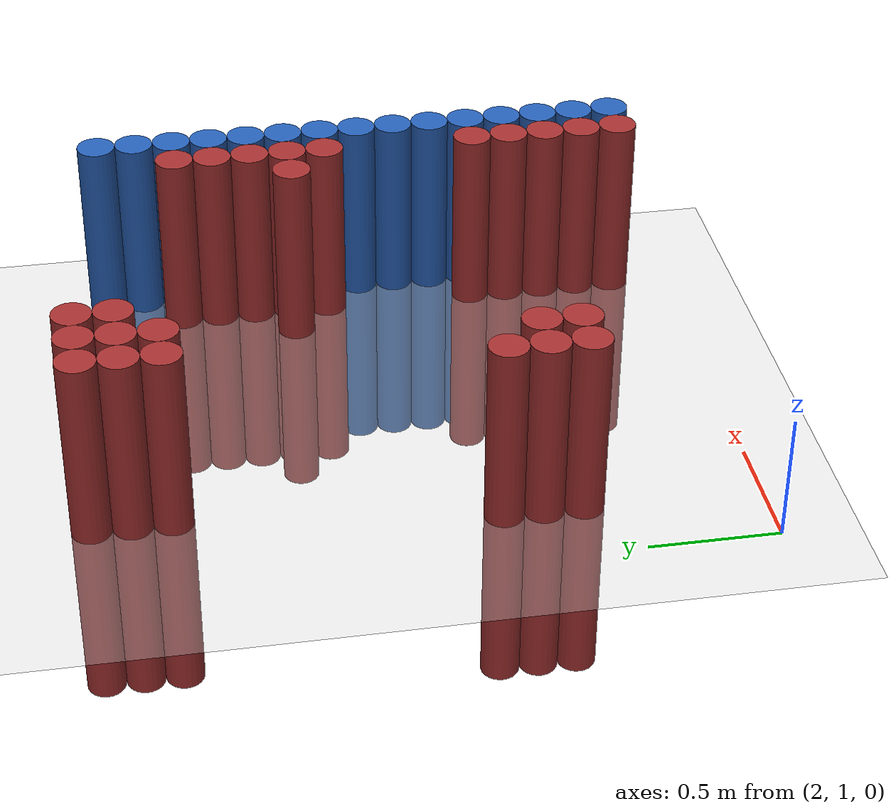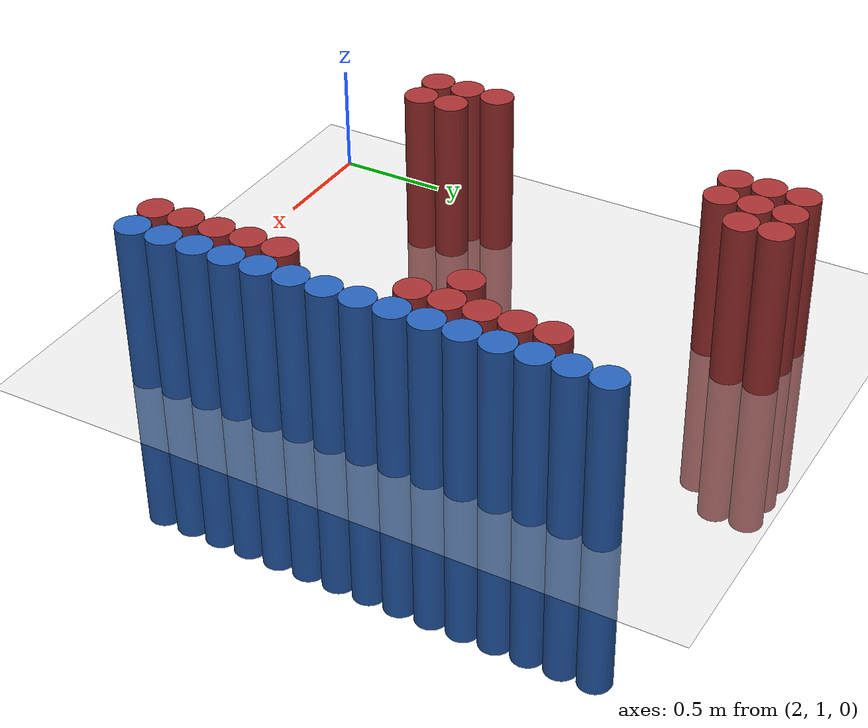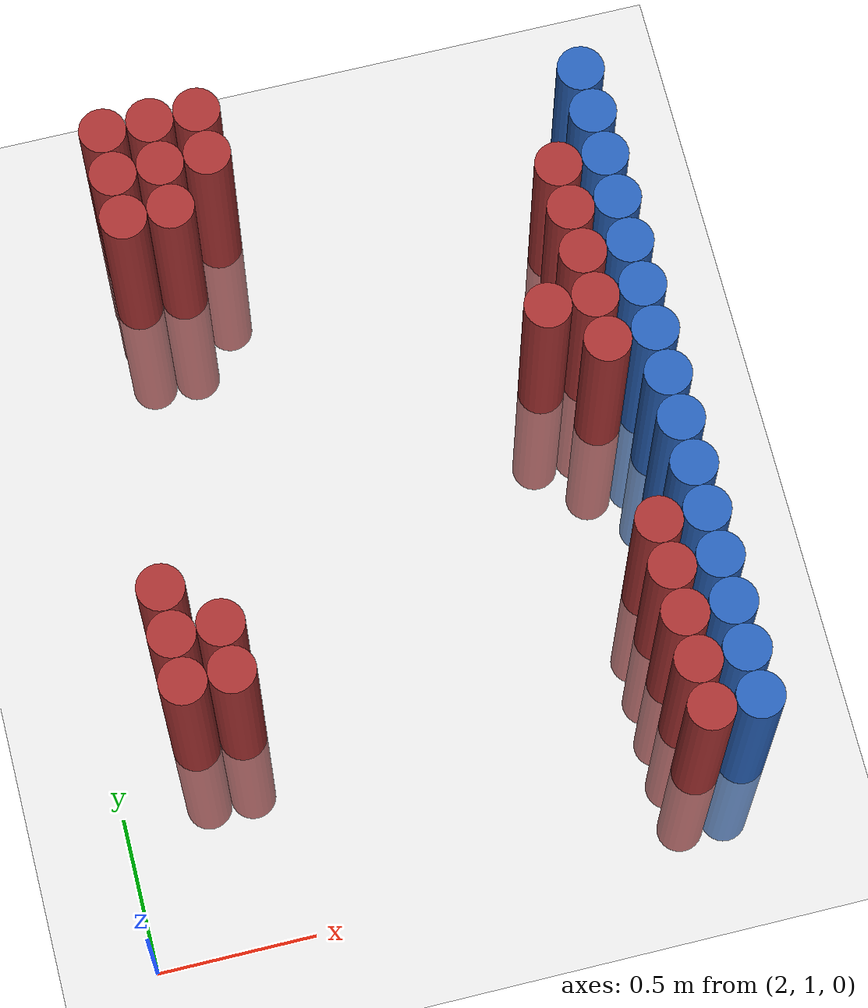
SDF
<sdf version="1.6">
 <world name="default">
  <model name="ground_plane">
   <static>1</static>
   <link name="link">
    <collision name="collision">
     <geometry><plane><normal>0 0 1</normal><size>100 100</size></plane></geometry>
     <surface><friction><ode><mu>100</mu><mu2>50</mu2></ode></friction></surface>
    </collision>
    <visual name="visual">
     <cast_shadows>0</cast_shadows>
     <geometry><plane><normal>0 0 1</normal><size>100 100</size></plane></geometry>
     <material>
      <script><uri>file://media/materials/scripts/gazebo.material</uri><name>Gazebo/Grey</name></script>
     </material>
    </visual>
   </link>
  </model>
  <model name="unit_cylinder_132">
   <static>1</static>
   <pose>3.925000 1.375000 0.000000 0.000000 0.000000 0.000000</pose>
   <link name="link">
    <inertial>
     <mass>1</mass>
     <inertia><ixx>0.145833</ixx><ixy>0</ixy><ixz>0</ixz><iyy>0.145833</iyy><iyz>0</iyz><izz>0.125</izz></inertia>
    </inertial>
    <collision name="collision">
     <geometry><cylinder><radius>0.075000</radius><length>1.5</length></cylinder></geometry>
    </collision>
    <visual name="visual">
     <geometry><cylinder><radius>0.075000</radius><length>1.5</length></cylinder></geometry>
     <material>
      <ambient>0.152000 0.379000 0.720000 1</ambient>
      <diffuse>0.152000 0.379000 0.720000 1</diffuse>
     </material>
     <material>
      <script><name>Gazebo/Grey</name><uri>file://media/materials/scripts/gazebo.material</uri></script>
     </material>
    </visual>
   </link>
  </model>
  <model name="unit_cylinder_134">
   <static>1</static>
   <pose>3.925000 1.525000 0.000000 0.000000 0.000000 0.000000</pose>
   <link name="link">
    <inertial>
     <mass>1</mass>
     <inertia><ixx>0.145833</ixx><ixy>0</ixy><ixz>0</ixz><iyy>0.145833</iyy><iyz>0</iyz><izz>0.125</izz></inertia>
    </inertial>
    <collision name="collision">
     <geometry><cylinder><radius>0.075000</radius><length>1.5</length></cylinder></geometry>
    </collision>
    <visual name="visual">
     <geometry><cylinder><radius>0.075000</radius><length>1.5</length></cylinder></geometry>
     <material>
      <ambient>0.152000 0.379000 0.720000 1</ambient>
      <diffuse>0.152000 0.379000 0.720000 1</diffuse>
     </material>
     <material>
      <script><name>Gazebo/Grey</name><uri>file://media/materials/scripts/gazebo.material</uri></script>
     </material>
    </visual>
   </link>
  </model>
  <model name="unit_cylinder_136">
   <static>1</static>
   <pose>3.925000 1.675000 0.000000 0.000000 0.000000 0.000000</pose>
   <link name="link">
    <inertial>
     <mass>1</mass>
     <inertia><ixx>0.145833</ixx><ixy>0</ixy><ixz>0</ixz><iyy>0.145833</iyy><iyz>0</iyz><izz>0.125</izz></inertia>
    </inertial>
    <collision name="collision">
     <geometry><cylinder><radius>0.075000</radius><length>1.5</length></cylinder></geometry>
    </collision>
    <visual name="visual">
     <geometry><cylinder><radius>0.075000</radius><length>1.5</length></cylinder></geometry>
     <material>
      <ambient>0.152000 0.379000 0.720000 1</ambient>
      <diffuse>0.152000 0.379000 0.720000 1</diffuse>
     </material>
     <material>
      <script><name>Gazebo/Grey</name><uri>file://media/materials/scripts/gazebo.material</uri></script>
     </material>
    </visual>
   </link>
  </model>
  <model name="unit_cylinder_138">
   <static>1</static>
   <pose>3.925000 1.825000 0.000000 0.000000 0.000000 0.000000</pose>
   <link name="link">
    <inertial>
     <mass>1</mass>
     <inertia><ixx>0.145833</ixx><ixy>0</ixy><ixz>0</ixz><iyy>0.145833</iyy><iyz>0</iyz><izz>0.125</izz></inertia>
    </inertial>
    <collision name="collision">
     <geometry><cylinder><radius>0.075000</radius><length>1.5</length></cylinder></geometry>
    </collision>
    <visual name="visual">
     <geometry><cylinder><radius>0.075000</radius><length>1.5</length></cylinder></geometry>
     <material>
      <ambient>0.152000 0.379000 0.720000 1</ambient>
      <diffuse>0.152000 0.379000 0.720000 1</diffuse>
     </material>
     <material>
      <script><name>Gazebo/Grey</name><uri>file://media/materials/scripts/gazebo.material</uri></script>
     </material>
    </visual>
   </link>
  </model>
  <model name="unit_cylinder_140">
   <static>1</static>
   <pose>3.925000 1.975000 0.000000 0.000000 0.000000 0.000000</pose>
   <link name="link">
    <inertial>
     <mass>1</mass>
     <inertia><ixx>0.145833</ixx><ixy>0</ixy><ixz>0</ixz><iyy>0.145833</iyy><iyz>0</iyz><izz>0.125</izz></inertia>
    </inertial>
    <collision name="collision">
     <geometry><cylinder><radius>0.075000</radius><length>1.5</length></cylinder></geometry>
    </collision>
    <visual name="visual">
     <geometry><cylinder><radius>0.075000</radius><length>1.5</length></cylinder></geometry>
     <material>
      <ambient>0.152000 0.379000 0.720000 1</ambient>
      <diffuse>0.152000 0.379000 0.720000 1</diffuse>
     </material>
     <material>
      <script><name>Gazebo/Grey</name><uri>file://media/materials/scripts/gazebo.material</uri></script>
     </material>
    </visual>
   </link>
  </model>
  <model name="unit_cylinder_142">
   <static>1</static>
   <pose>3.925000 2.125000 0.000000 0.000000 0.000000 0.000000</pose>
   <link name="link">
    <inertial>
     <mass>1</mass>
     <inertia><ixx>0.145833</ixx><ixy>0</ixy><ixz>0</ixz><iyy>0.145833</iyy><iyz>0</iyz><izz>0.125</izz></inertia>
    </inertial>
    <collision name="collision">
     <geometry><cylinder><radius>0.075000</radius><length>1.5</length></cylinder></geometry>
    </collision>
    <visual name="visual">
     <geometry><cylinder><radius>0.075000</radius><length>1.5</length></cylinder></geometry>
     <material>
      <ambient>0.152000 0.379000 0.720000 1</ambient>
      <diffuse>0.152000 0.379000 0.720000 1</diffuse>
     </material>
     <material>
      <script><name>Gazebo/Grey</name><uri>file://media/materials/scripts/gazebo.material</uri></script>
     </material>
    </visual>
   </link>
  </model>
  <model name="unit_cylinder_144">
   <static>1</static>
   <pose>3.925000 2.275000 0.000000 0.000000 0.000000 0.000000</pose>
   <link name="link">
    <inertial>
     <mass>1</mass>
     <inertia><ixx>0.145833</ixx><ixy>0</ixy><ixz>0</ixz><iyy>0.145833</iyy><iyz>0</iyz><izz>0.125</izz></inertia>
    </inertial>
    <collision name="collision">
     <geometry><cylinder><radius>0.075000</radius><length>1.5</length></cylinder></geometry>
    </collision>
    <visual name="visual">
     <geometry><cylinder><radius>0.075000</radius><length>1.5</length></cylinder></geometry>
     <material>
      <ambient>0.152000 0.379000 0.720000 1</ambient>
      <diffuse>0.152000 0.379000 0.720000 1</diffuse>
     </material>
     <material>
      <script><name>Gazebo/Grey</name><uri>file://media/materials/scripts/gazebo.material</uri></script>
     </material>
    </visual>
   </link>
  </model>
  <model name="unit_cylinder_146">
   <static>1</static>
   <pose>3.925000 2.425000 0.000000 0.000000 0.000000 0.000000</pose>
   <link name="link">
    <inertial>
     <mass>1</mass>
     <inertia><ixx>0.145833</ixx><ixy>0</ixy><ixz>0</ixz><iyy>0.145833</iyy><iyz>0</iyz><izz>0.125</izz></inertia>
    </inertial>
    <collision name="collision">
     <geometry><cylinder><radius>0.075000</radius><length>1.5</length></cylinder></geometry>
    </collision>
    <visual name="visual">
     <geometry><cylinder><radius>0.075000</radius><length>1.5</length></cylinder></geometry>
     <material>
      <ambient>0.152000 0.379000 0.720000 1</ambient>
      <diffuse>0.152000 0.379000 0.720000 1</diffuse>
     </material>
     <material>
      <script><name>Gazebo/Grey</name><uri>file://media/materials/scripts/gazebo.material</uri></script>
     </material>
    </visual>
   </link>
  </model>
  <model name="unit_cylinder_148">
   <static>1</static>
   <pose>3.925000 2.575000 0.000000 0.000000 0.000000 0.000000</pose>
   <link name="link">
    <inertial>
     <mass>1</mass>
     <inertia><ixx>0.145833</ixx><ixy>0</ixy><ixz>0</ixz><iyy>0.145833</iyy><iyz>0</iyz><izz>0.125</izz></inertia>
    </inertial>
    <collision name="collision">
     <geometry><cylinder><radius>0.075000</radius><length>1.5</length></cylinder></geometry>
    </collision>
    <visual name="visual">
     <geometry><cylinder><radius>0.075000</radius><length>1.5</length></cylinder></geometry>
     <material>
      <ambient>0.152000 0.379000 0.720000 1</ambient>
      <diffuse>0.152000 0.379000 0.720000 1</diffuse>
     </material>
     <material>
      <script><name>Gazebo/Grey</name><uri>file://media/materials/scripts/gazebo.material</uri></script>
     </material>
    </visual>
   </link>
  </model>
  <model name="unit_cylinder_150">
   <static>1</static>
   <pose>3.925000 2.725000 0.000000 0.000000 0.000000 0.000000</pose>
   <link name="link">
    <inertial>
     <mass>1</mass>
     <inertia><ixx>0.145833</ixx><ixy>0</ixy><ixz>0</ixz><iyy>0.145833</iyy><iyz>0</iyz><izz>0.125</izz></inertia>
    </inertial>
    <collision name="collision">
     <geometry><cylinder><radius>0.075000</radius><length>1.5</length></cylinder></geometry>
    </collision>
    <visual name="visual">
     <geometry><cylinder><radius>0.075000</radius><length>1.5</length></cylinder></geometry>
     <material>
      <ambient>0.152000 0.379000 0.720000 1</ambient>
      <diffuse>0.152000 0.379000 0.720000 1</diffuse>
     </material>
     <material>
      <script><name>Gazebo/Grey</name><uri>file://media/materials/scripts/gazebo.material</uri></script>
     </material>
    </visual>
   </link>
  </model>
  <model name="unit_cylinder_152">
   <static>1</static>
   <pose>3.925000 2.875000 0.000000 0.000000 0.000000 0.000000</pose>
   <link name="link">
    <inertial>
     <mass>1</mass>
     <inertia><ixx>0.145833</ixx><ixy>0</ixy><ixz>0</ixz><iyy>0.145833</iyy><iyz>0</iyz><izz>0.125</izz></inertia>
    </inertial>
    <collision name="collision">
     <geometry><cylinder><radius>0.075000</radius><length>1.5</length></cylinder></geometry>
    </collision>
    <visual name="visual">
     <geometry><cylinder><radius>0.075000</radius><length>1.5</length></cylinder></geometry>
     <material>
      <ambient>0.152000 0.379000 0.720000 1</ambient>
      <diffuse>0.152000 0.379000 0.720000 1</diffuse>
     </material>
     <material>
      <script><name>Gazebo/Grey</name><uri>file://media/materials/scripts/gazebo.material</uri></script>
     </material>
    </visual>
   </link>
  </model>
  <model name="unit_cylinder_154">
   <static>1</static>
   <pose>3.925000 3.025000 0.000000 0.000000 0.000000 0.000000</pose>
   <link name="link">
    <inertial>
     <mass>1</mass>
     <inertia><ixx>0.145833</ixx><ixy>0</ixy><ixz>0</ixz><iyy>0.145833</iyy><iyz>0</iyz><izz>0.125</izz></inertia>
    </inertial>
    <collision name="collision">
     <geometry><cylinder><radius>0.075000</radius><length>1.5</length></cylinder></geometry>
    </collision>
    <visual name="visual">
     <geometry><cylinder><radius>0.075000</radius><length>1.5</length></cylinder></geometry>
     <material>
      <ambient>0.152000 0.379000 0.720000 1</ambient>
      <diffuse>0.152000 0.379000 0.720000 1</diffuse>
     </material>
     <material>
      <script><name>Gazebo/Grey</name><uri>file://media/materials/scripts/gazebo.material</uri></script>
     </material>
    </visual>
   </link>
  </model>
  <model name="unit_cylinder_156">
   <static>1</static>
   <pose>3.925000 3.175000 0.000000 0.000000 0.000000 0.000000</pose>
   <link name="link">
    <inertial>
     <mass>1</mass>
     <inertia><ixx>0.145833</ixx><ixy>0</ixy><ixz>0</ixz><iyy>0.145833</iyy><iyz>0</iyz><izz>0.125</izz></inertia>
    </inertial>
    <collision name="collision">
     <geometry><cylinder><radius>0.075000</radius><length>1.5</length></cylinder></geometry>
    </collision>
    <visual name="visual">
     <geometry><cylinder><radius>0.075000</radius><length>1.5</length></cylinder></geometry>
     <material>
      <ambient>0.152000 0.379000 0.720000 1</ambient>
      <diffuse>0.152000 0.379000 0.720000 1</diffuse>
     </material>
     <material>
      <script><name>Gazebo/Grey</name><uri>file://media/materials/scripts/gazebo.material</uri></script>
     </material>
    </visual>
   </link>
  </model>
  <model name="unit_cylinder_158">
   <static>1</static>
   <pose>3.925000 3.325000 0.000000 0.000000 0.000000 0.000000</pose>
   <link name="link">
    <inertial>
     <mass>1</mass>
     <inertia><ixx>0.145833</ixx><ixy>0</ixy><ixz>0</ixz><iyy>0.145833</iyy><iyz>0</iyz><izz>0.125</izz></inertia>
    </inertial>
    <collision name="collision">
     <geometry><cylinder><radius>0.075000</radius><length>1.5</length></cylinder></geometry>
    </collision>
    <visual name="visual">
     <geometry><cylinder><radius>0.075000</radius><length>1.5</length></cylinder></geometry>
     <material>
      <ambient>0.152000 0.379000 0.720000 1</ambient>
      <diffuse>0.152000 0.379000 0.720000 1</diffuse>
     </material>
     <material>
      <script><name>Gazebo/Grey</name><uri>file://media/materials/scripts/gazebo.material</uri></script>
     </material>
    </visual>
   </link>
  </model>
  <model name="unit_cylinder_560">
   <static>1</static>
   <pose>2.275000 1.675000 0.000000 0.000000 0.000000 0.000000</pose>
   <link name="link">
    <inertial>
     <mass>1</mass>
     <inertia><ixx>0.145833</ixx><ixy>0</ixy><ixz>0</ixz><iyy>0.145833</iyy><iyz>0</iyz><izz>0.125</izz></inertia>
    </inertial>
    <collision name="collision">
     <geometry><cylinder><radius>0.075000</radius><length>1.5</length></cylinder></geometry>
    </collision>
    <visual name="visual">
     <geometry><cylinder><radius>0.075000</radius><length>1.5</length></cylinder></geometry>
     <material>
      <ambient>0.648000 0.192000 0.192000 1</ambient>
      <diffuse>0.648000 0.192000 0.192000 1</diffuse>
     </material>
     <material>
      <script><name>Gazebo/Grey</name><uri>file://media/materials/scripts/gazebo.material</uri></script>
     </material>
    </visual>
   </link>
  </model>
  <model name="unit_cylinder_561">
   <static>1</static>
   <pose>2.275000 1.825000 0.000000 0.000000 0.000000 0.000000</pose>
   <link name="link">
    <inertial>
     <mass>1</mass>
     <inertia><ixx>0.145833</ixx><ixy>0</ixy><ixz>0</ixz><iyy>0.145833</iyy><iyz>0</iyz><izz>0.125</izz></inertia>
    </inertial>
    <collision name="collision">
     <geometry><cylinder><radius>0.075000</radius><length>1.5</length></cylinder></geometry>
    </collision>
    <visual name="visual">
     <geometry><cylinder><radius>0.075000</radius><length>1.5</length></cylinder></geometry>
     <material>
      <ambient>0.648000 0.192000 0.192000 1</ambient>
      <diffuse>0.648000 0.192000 0.192000 1</diffuse>
     </material>
     <material>
      <script><name>Gazebo/Grey</name><uri>file://media/materials/scripts/gazebo.material</uri></script>
     </material>
    </visual>
   </link>
  </model>
  <model name="unit_cylinder_562">
   <static>1</static>
   <pose>2.275000 1.975000 0.000000 0.000000 0.000000 0.000000</pose>
   <link name="link">
    <inertial>
     <mass>1</mass>
     <inertia><ixx>0.145833</ixx><ixy>0</ixy><ixz>0</ixz><iyy>0.145833</iyy><iyz>0</iyz><izz>0.125</izz></inertia>
    </inertial>
    <collision name="collision">
     <geometry><cylinder><radius>0.075000</radius><length>1.5</length></cylinder></geometry>
    </collision>
    <visual name="visual">
     <geometry><cylinder><radius>0.075000</radius><length>1.5</length></cylinder></geometry>
     <material>
      <ambient>0.648000 0.192000 0.192000 1</ambient>
      <diffuse>0.648000 0.192000 0.192000 1</diffuse>
     </material>
     <material>
      <script><name>Gazebo/Grey</name><uri>file://media/materials/scripts/gazebo.material</uri></script>
     </material>
    </visual>
   </link>
  </model>
  <model name="unit_cylinder_565">
   <static>1</static>
   <pose>2.425000 1.675000 0.000000 0.000000 0.000000 0.000000</pose>
   <link name="link">
    <inertial>
     <mass>1</mass>
     <inertia><ixx>0.145833</ixx><ixy>0</ixy><ixz>0</ixz><iyy>0.145833</iyy><iyz>0</iyz><izz>0.125</izz></inertia>
    </inertial>
    <collision name="collision">
     <geometry><cylinder><radius>0.075000</radius><length>1.5</length></cylinder></geometry>
    </collision>
    <visual name="visual">
     <geometry><cylinder><radius>0.075000</radius><length>1.5</length></cylinder></geometry>
     <material>
      <ambient>0.648000 0.192000 0.192000 1</ambient>
      <diffuse>0.648000 0.192000 0.192000 1</diffuse>
     </material>
     <material>
      <script><name>Gazebo/Grey</name><uri>file://media/materials/scripts/gazebo.material</uri></script>
     </material>
    </visual>
   </link>
  </model>
  <model name="unit_cylinder_566">
   <static>1</static>
   <pose>2.425000 1.825000 0.000000 0.000000 0.000000 0.000000</pose>
   <link name="link">
    <inertial>
     <mass>1</mass>
     <inertia><ixx>0.145833</ixx><ixy>0</ixy><ixz>0</ixz><iyy>0.145833</iyy><iyz>0</iyz><izz>0.125</izz></inertia>
    </inertial>
    <collision name="collision">
     <geometry><cylinder><radius>0.075000</radius><length>1.5</length></cylinder></geometry>
    </collision>
    <visual name="visual">
     <geometry><cylinder><radius>0.075000</radius><length>1.5</length></cylinder></geometry>
     <material>
      <ambient>0.648000 0.192000 0.192000 1</ambient>
      <diffuse>0.648000 0.192000 0.192000 1</diffuse>
     </material>
     <material>
      <script><name>Gazebo/Grey</name><uri>file://media/materials/scripts/gazebo.material</uri></script>
     </material>
    </visual>
   </link>
  </model>
  <model name="unit_cylinder_567">
   <static>1</static>
   <pose>2.425000 3.175000 0.000000 0.000000 0.000000 0.000000</pose>
   <link name="link">
    <inertial>
     <mass>1</mass>
     <inertia><ixx>0.145833</ixx><ixy>0</ixy><ixz>0</ixz><iyy>0.145833</iyy><iyz>0</iyz><izz>0.125</izz></inertia>
    </inertial>
    <collision name="collision">
     <geometry><cylinder><radius>0.075000</radius><length>1.5</length></cylinder></geometry>
    </collision>
    <visual name="visual">
     <geometry><cylinder><radius>0.075000</radius><length>1.5</length></cylinder></geometry>
     <material>
      <ambient>0.648000 0.192000 0.192000 1</ambient>
      <diffuse>0.648000 0.192000 0.192000 1</diffuse>
     </material>
     <material>
      <script><name>Gazebo/Grey</name><uri>file://media/materials/scripts/gazebo.material</uri></script>
     </material>
    </visual>
   </link>
  </model>
  <model name="unit_cylinder_568">
   <static>1</static>
   <pose>2.425000 3.325000 0.000000 0.000000 0.000000 0.000000</pose>
   <link name="link">
    <inertial>
     <mass>1</mass>
     <inertia><ixx>0.145833</ixx><ixy>0</ixy><ixz>0</ixz><iyy>0.145833</iyy><iyz>0</iyz><izz>0.125</izz></inertia>
    </inertial>
    <collision name="collision">
     <geometry><cylinder><radius>0.075000</radius><length>1.5</length></cylinder></geometry>
    </collision>
    <visual name="visual">
     <geometry><cylinder><radius>0.075000</radius><length>1.5</length></cylinder></geometry>
     <material>
      <ambient>0.648000 0.192000 0.192000 1</ambient>
      <diffuse>0.648000 0.192000 0.192000 1</diffuse>
     </material>
     <material>
      <script><name>Gazebo/Grey</name><uri>file://media/materials/scripts/gazebo.material</uri></script>
     </material>
    </visual>
   </link>
  </model>
  <model name="unit_cylinder_569">
   <static>1</static>
   <pose>2.425000 3.475000 0.000000 0.000000 0.000000 0.000000</pose>
   <link name="link">
    <inertial>
     <mass>1</mass>
     <inertia><ixx>0.145833</ixx><ixy>0</ixy><ixz>0</ixz><iyy>0.145833</iyy><iyz>0</iyz><izz>0.125</izz></inertia>
    </inertial>
    <collision name="collision">
     <geometry><cylinder><radius>0.075000</radius><length>1.5</length></cylinder></geometry>
    </collision>
    <visual name="visual">
     <geometry><cylinder><radius>0.075000</radius><length>1.5</length></cylinder></geometry>
     <material>
      <ambient>0.648000 0.192000 0.192000 1</ambient>
      <diffuse>0.648000 0.192000 0.192000 1</diffuse>
     </material>
     <material>
      <script><name>Gazebo/Grey</name><uri>file://media/materials/scripts/gazebo.material</uri></script>
     </material>
    </visual>
   </link>
  </model>
  <model name="unit_cylinder_572">
   <static>1</static>
   <pose>2.575000 3.175000 0.000000 0.000000 0.000000 0.000000</pose>
   <link name="link">
    <inertial>
     <mass>1</mass>
     <inertia><ixx>0.145833</ixx><ixy>0</ixy><ixz>0</ixz><iyy>0.145833</iyy><iyz>0</iyz><izz>0.125</izz></inertia>
    </inertial>
    <collision name="collision">
     <geometry><cylinder><radius>0.075000</radius><length>1.5</length></cylinder></geometry>
    </collision>
    <visual name="visual">
     <geometry><cylinder><radius>0.075000</radius><length>1.5</length></cylinder></geometry>
     <material>
      <ambient>0.648000 0.192000 0.192000 1</ambient>
      <diffuse>0.648000 0.192000 0.192000 1</diffuse>
     </material>
     <material>
      <script><name>Gazebo/Grey</name><uri>file://media/materials/scripts/gazebo.material</uri></script>
     </material>
    </visual>
   </link>
  </model>
  <model name="unit_cylinder_573">
   <static>1</static>
   <pose>2.575000 3.325000 0.000000 0.000000 0.000000 0.000000</pose>
   <link name="link">
    <inertial>
     <mass>1</mass>
     <inertia><ixx>0.145833</ixx><ixy>0</ixy><ixz>0</ixz><iyy>0.145833</iyy><iyz>0</iyz><izz>0.125</izz></inertia>
    </inertial>
    <collision name="collision">
     <geometry><cylinder><radius>0.075000</radius><length>1.5</length></cylinder></geometry>
    </collision>
    <visual name="visual">
     <geometry><cylinder><radius>0.075000</radius><length>1.5</length></cylinder></geometry>
     <material>
      <ambient>0.648000 0.192000 0.192000 1</ambient>
      <diffuse>0.648000 0.192000 0.192000 1</diffuse>
     </material>
     <material>
      <script><name>Gazebo/Grey</name><uri>file://media/materials/scripts/gazebo.material</uri></script>
     </material>
    </visual>
   </link>
  </model>
  <model name="unit_cylinder_574">
   <static>1</static>
   <pose>2.575000 3.475000 0.000000 0.000000 0.000000 0.000000</pose>
   <link name="link">
    <inertial>
     <mass>1</mass>
     <inertia><ixx>0.145833</ixx><ixy>0</ixy><ixz>0</ixz><iyy>0.145833</iyy><iyz>0</iyz><izz>0.125</izz></inertia>
    </inertial>
    <collision name="collision">
     <geometry><cylinder><radius>0.075000</radius><length>1.5</length></cylinder></geometry>
    </collision>
    <visual name="visual">
     <geometry><cylinder><radius>0.075000</radius><length>1.5</length></cylinder></geometry>
     <material>
      <ambient>0.648000 0.192000 0.192000 1</ambient>
      <diffuse>0.648000 0.192000 0.192000 1</diffuse>
     </material>
     <material>
      <script><name>Gazebo/Grey</name><uri>file://media/materials/scripts/gazebo.material</uri></script>
     </material>
    </visual>
   </link>
  </model>
  <model name="unit_cylinder_578">
   <static>1</static>
   <pose>2.725000 3.325000 0.000000 0.000000 0.000000 0.000000</pose>
   <link name="link">
    <inertial>
     <mass>1</mass>
     <inertia><ixx>0.145833</ixx><ixy>0</ixy><ixz>0</ixz><iyy>0.145833</iyy><iyz>0</iyz><izz>0.125</izz></inertia>
    </inertial>
    <collision name="collision">
     <geometry><cylinder><radius>0.075000</radius><length>1.5</length></cylinder></geometry>
    </collision>
    <visual name="visual">
     <geometry><cylinder><radius>0.075000</radius><length>1.5</length></cylinder></geometry>
     <material>
      <ambient>0.648000 0.192000 0.192000 1</ambient>
      <diffuse>0.648000 0.192000 0.192000 1</diffuse>
     </material>
     <material>
      <script><name>Gazebo/Grey</name><uri>file://media/materials/scripts/gazebo.material</uri></script>
     </material>
    </visual>
   </link>
  </model>
  <model name="unit_cylinder_579">
   <static>1</static>
   <pose>2.725000 3.475000 0.000000 0.000000 0.000000 0.000000</pose>
   <link name="link">
    <inertial>
     <mass>1</mass>
     <inertia><ixx>0.145833</ixx><ixy>0</ixy><ixz>0</ixz><iyy>0.145833</iyy><iyz>0</iyz><izz>0.125</izz></inertia>
    </inertial>
    <collision name="collision">
     <geometry><cylinder><radius>0.075000</radius><length>1.5</length></cylinder></geometry>
    </collision>
    <visual name="visual">
     <geometry><cylinder><radius>0.075000</radius><length>1.5</length></cylinder></geometry>
     <material>
      <ambient>0.648000 0.192000 0.192000 1</ambient>
      <diffuse>0.648000 0.192000 0.192000 1</diffuse>
     </material>
     <material>
      <script><name>Gazebo/Grey</name><uri>file://media/materials/scripts/gazebo.material</uri></script>
     </material>
    </visual>
   </link>
  </model>
  <model name="unit_cylinder_603">
   <static>1</static>
   <pose>3.625000 2.575000 0.000000 0.000000 0.000000 0.000000</pose>
   <link name="link">
    <inertial>
     <mass>1</mass>
     <inertia><ixx>0.145833</ixx><ixy>0</ixy><ixz>0</ixz><iyy>0.145833</iyy><iyz>0</iyz><izz>0.125</izz></inertia>
    </inertial>
    <collision name="collision">
     <geometry><cylinder><radius>0.075000</radius><length>1.5</length></cylinder></geometry>
    </collision>
    <visual name="visual">
     <geometry><cylinder><radius>0.075000</radius><length>1.5</length></cylinder></geometry>
     <material>
      <ambient>0.648000 0.192000 0.192000 1</ambient>
      <diffuse>0.648000 0.192000 0.192000 1</diffuse>
     </material>
     <material>
      <script><name>Gazebo/Grey</name><uri>file://media/materials/scripts/gazebo.material</uri></script>
     </material>
    </visual>
   </link>
  </model>
  <model name="unit_cylinder_616">
   <static>1</static>
   <pose>3.775000 1.225000 0.000000 0.000000 0.000000 0.000000</pose>
   <link name="link">
    <inertial>
     <mass>1</mass>
     <inertia><ixx>0.145833</ixx><ixy>0</ixy><ixz>0</ixz><iyy>0.145833</iyy><iyz>0</iyz><izz>0.125</izz></inertia>
    </inertial>
    <collision name="collision">
     <geometry><cylinder><radius>0.075000</radius><length>1.5</length></cylinder></geometry>
    </collision>
    <visual name="visual">
     <geometry><cylinder><radius>0.075000</radius><length>1.5</length></cylinder></geometry>
     <material>
      <ambient>0.648000 0.192000 0.192000 1</ambient>
      <diffuse>0.648000 0.192000 0.192000 1</diffuse>
     </material>
     <material>
      <script><name>Gazebo/Grey</name><uri>file://media/materials/scripts/gazebo.material</uri></script>
     </material>
    </visual>
   </link>
  </model>
  <model name="unit_cylinder_617">
   <static>1</static>
   <pose>3.775000 1.375000 0.000000 0.000000 0.000000 0.000000</pose>
   <link name="link">
    <inertial>
     <mass>1</mass>
     <inertia><ixx>0.145833</ixx><ixy>0</ixy><ixz>0</ixz><iyy>0.145833</iyy><iyz>0</iyz><izz>0.125</izz></inertia>
    </inertial>
    <collision name="collision">
     <geometry><cylinder><radius>0.075000</radius><length>1.5</length></cylinder></geometry>
    </collision>
    <visual name="visual">
     <geometry><cylinder><radius>0.075000</radius><length>1.5</length></cylinder></geometry>
     <material>
      <ambient>0.648000 0.192000 0.192000 1</ambient>
      <diffuse>0.648000 0.192000 0.192000 1</diffuse>
     </material>
     <material>
      <script><name>Gazebo/Grey</name><uri>file://media/materials/scripts/gazebo.material</uri></script>
     </material>
    </visual>
   </link>
  </model>
  <model name="unit_cylinder_618">
   <static>1</static>
   <pose>3.775000 1.525000 0.000000 0.000000 0.000000 0.000000</pose>
   <link name="link">
    <inertial>
     <mass>1</mass>
     <inertia><ixx>0.145833</ixx><ixy>0</ixy><ixz>0</ixz><iyy>0.145833</iyy><iyz>0</iyz><izz>0.125</izz></inertia>
    </inertial>
    <collision name="collision">
     <geometry><cylinder><radius>0.075000</radius><length>1.5</length></cylinder></geometry>
    </collision>
    <visual name="visual">
     <geometry><cylinder><radius>0.075000</radius><length>1.5</length></cylinder></geometry>
     <material>
      <ambient>0.648000 0.192000 0.192000 1</ambient>
      <diffuse>0.648000 0.192000 0.192000 1</diffuse>
     </material>
     <material>
      <script><name>Gazebo/Grey</name><uri>file://media/materials/scripts/gazebo.material</uri></script>
     </material>
    </visual>
   </link>
  </model>
  <model name="unit_cylinder_619">
   <static>1</static>
   <pose>3.775000 1.675000 0.000000 0.000000 0.000000 0.000000</pose>
   <link name="link">
    <inertial>
     <mass>1</mass>
     <inertia><ixx>0.145833</ixx><ixy>0</ixy><ixz>0</ixz><iyy>0.145833</iyy><iyz>0</iyz><izz>0.125</izz></inertia>
    </inertial>
    <collision name="collision">
     <geometry><cylinder><radius>0.075000</radius><length>1.5</length></cylinder></geometry>
    </collision>
    <visual name="visual">
     <geometry><cylinder><radius>0.075000</radius><length>1.5</length></cylinder></geometry>
     <material>
      <ambient>0.648000 0.192000 0.192000 1</ambient>
      <diffuse>0.648000 0.192000 0.192000 1</diffuse>
     </material>
     <material>
      <script><name>Gazebo/Grey</name><uri>file://media/materials/scripts/gazebo.material</uri></script>
     </material>
    </visual>
   </link>
  </model>
  <model name="unit_cylinder_620">
   <static>1</static>
   <pose>3.775000 1.825000 0.000000 0.000000 0.000000 0.000000</pose>
   <link name="link">
    <inertial>
     <mass>1</mass>
     <inertia><ixx>0.145833</ixx><ixy>0</ixy><ixz>0</ixz><iyy>0.145833</iyy><iyz>0</iyz><izz>0.125</izz></inertia>
    </inertial>
    <collision name="collision">
     <geometry><cylinder><radius>0.075000</radius><length>1.5</length></cylinder></geometry>
    </collision>
    <visual name="visual">
     <geometry><cylinder><radius>0.075000</radius><length>1.5</length></cylinder></geometry>
     <material>
      <ambient>0.648000 0.192000 0.192000 1</ambient>
      <diffuse>0.648000 0.192000 0.192000 1</diffuse>
     </material>
     <material>
      <script><name>Gazebo/Grey</name><uri>file://media/materials/scripts/gazebo.material</uri></script>
     </material>
    </visual>
   </link>
  </model>
  <model name="unit_cylinder_621">
   <static>1</static>
   <pose>3.775000 2.425000 0.000000 0.000000 0.000000 0.000000</pose>
   <link name="link">
    <inertial>
     <mass>1</mass>
     <inertia><ixx>0.145833</ixx><ixy>0</ixy><ixz>0</ixz><iyy>0.145833</iyy><iyz>0</iyz><izz>0.125</izz></inertia>
    </inertial>
    <collision name="collision">
     <geometry><cylinder><radius>0.075000</radius><length>1.5</length></cylinder></geometry>
    </collision>
    <visual name="visual">
     <geometry><cylinder><radius>0.075000</radius><length>1.5</length></cylinder></geometry>
     <material>
      <ambient>0.648000 0.192000 0.192000 1</ambient>
      <diffuse>0.648000 0.192000 0.192000 1</diffuse>
     </material>
     <material>
      <script><name>Gazebo/Grey</name><uri>file://media/materials/scripts/gazebo.material</uri></script>
     </material>
    </visual>
   </link>
  </model>
  <model name="unit_cylinder_622">
   <static>1</static>
   <pose>3.775000 2.575000 0.000000 0.000000 0.000000 0.000000</pose>
   <link name="link">
    <inertial>
     <mass>1</mass>
     <inertia><ixx>0.145833</ixx><ixy>0</ixy><ixz>0</ixz><iyy>0.145833</iyy><iyz>0</iyz><izz>0.125</izz></inertia>
    </inertial>
    <collision name="collision">
     <geometry><cylinder><radius>0.075000</radius><length>1.5</length></cylinder></geometry>
    </collision>
    <visual name="visual">
     <geometry><cylinder><radius>0.075000</radius><length>1.5</length></cylinder></geometry>
     <material>
      <ambient>0.648000 0.192000 0.192000 1</ambient>
      <diffuse>0.648000 0.192000 0.192000 1</diffuse>
     </material>
     <material>
      <script><name>Gazebo/Grey</name><uri>file://media/materials/scripts/gazebo.material</uri></script>
     </material>
    </visual>
   </link>
  </model>
  <model name="unit_cylinder_623">
   <static>1</static>
   <pose>3.775000 2.725000 0.000000 0.000000 0.000000 0.000000</pose>
   <link name="link">
    <inertial>
     <mass>1</mass>
     <inertia><ixx>0.145833</ixx><ixy>0</ixy><ixz>0</ixz><iyy>0.145833</iyy><iyz>0</iyz><izz>0.125</izz></inertia>
    </inertial>
    <collision name="collision">
     <geometry><cylinder><radius>0.075000</radius><length>1.5</length></cylinder></geometry>
    </collision>
    <visual name="visual">
     <geometry><cylinder><radius>0.075000</radius><length>1.5</length></cylinder></geometry>
     <material>
      <ambient>0.648000 0.192000 0.192000 1</ambient>
      <diffuse>0.648000 0.192000 0.192000 1</diffuse>
     </material>
     <material>
      <script><name>Gazebo/Grey</name><uri>file://media/materials/scripts/gazebo.material</uri></script>
     </material>
    </visual>
   </link>
  </model>
  <model name="unit_cylinder_624">
   <static>1</static>
   <pose>3.775000 2.875000 0.000000 0.000000 0.000000 0.000000</pose>
   <link name="link">
    <inertial>
     <mass>1</mass>
     <inertia><ixx>0.145833</ixx><ixy>0</ixy><ixz>0</ixz><iyy>0.145833</iyy><iyz>0</iyz><izz>0.125</izz></inertia>
    </inertial>
    <collision name="collision">
     <geometry><cylinder><radius>0.075000</radius><length>1.5</length></cylinder></geometry>
    </collision>
    <visual name="visual">
     <geometry><cylinder><radius>0.075000</radius><length>1.5</length></cylinder></geometry>
     <material>
      <ambient>0.648000 0.192000 0.192000 1</ambient>
      <diffuse>0.648000 0.192000 0.192000 1</diffuse>
     </material>
     <material>
      <script><name>Gazebo/Grey</name><uri>file://media/materials/scripts/gazebo.material</uri></script>
     </material>
    </visual>
   </link>
  </model>
  <model name="unit_cylinder_625">
   <static>1</static>
   <pose>3.775000 3.025000 0.000000 0.000000 0.000000 0.000000</pose>
   <link name="link">
    <inertial>
     <mass>1</mass>
     <inertia><ixx>0.145833</ixx><ixy>0</ixy><ixz>0</ixz><iyy>0.145833</iyy><iyz>0</iyz><izz>0.125</izz></inertia>
    </inertial>
    <collision name="collision">
     <geometry><cylinder><radius>0.075000</radius><length>1.5</length></cylinder></geometry>
    </collision>
    <visual name="visual">
     <geometry><cylinder><radius>0.075000</radius><length>1.5</length></cylinder></geometry>
     <material>
      <ambient>0.648000 0.192000 0.192000 1</ambient>
      <diffuse>0.648000 0.192000 0.192000 1</diffuse>
     </material>
     <material>
      <script><name>Gazebo/Grey</name><uri>file://media/materials/scripts/gazebo.material</uri></script>
     </material>
    </visual>
   </link>
  </model>
  <model name="unit_cylinder_656">
   <static>1</static>
   <pose>3.925000 1.225000 0.000000 0.000000 0.000000 0.000000</pose>
   <link name="link">
    <inertial>
     <mass>1</mass>
     <inertia><ixx>0.145833</ixx><ixy>0</ixy><ixz>0</ixz><iyy>0.145833</iyy><iyz>0</iyz><izz>0.125</izz></inertia>
    </inertial>
    <collision name="collision">
     <geometry><cylinder><radius>0.075000</radius><length>1.5</length></cylinder></geometry>
    </collision>
    <visual name="visual">
     <geometry><cylinder><radius>0.075000</radius><length>1.5</length></cylinder></geometry>
     <material>
      <ambient>0.152000 0.379000 0.720000 1</ambient>
      <diffuse>0.152000 0.379000 0.720000 1</diffuse>
     </material>
     <material>
      <script><name>Gazebo/Grey</name><uri>file://media/materials/scripts/gazebo.material</uri></script>
     </material>
    </visual>
   </link>
  </model>
  <model name="unit_cylinder_657">
   <static>1</static>
   <pose>3.925000 1.375000 0.000000 0.000000 0.000000 0.000000</pose>
   <link name="link">
    <inertial>
     <mass>1</mass>
     <inertia><ixx>0.145833</ixx><ixy>0</ixy><ixz>0</ixz><iyy>0.145833</iyy><iyz>0</iyz><izz>0.125</izz></inertia>
    </inertial>
    <collision name="collision">
     <geometry><cylinder><radius>0.075000</radius><length>1.5</length></cylinder></geometry>
    </collision>
    <visual name="visual">
     <geometry><cylinder><radius>0.075000</radius><length>1.5</length></cylinder></geometry>
     <material>
      <ambient>0.152000 0.379000 0.720000 1</ambient>
      <diffuse>0.152000 0.379000 0.720000 1</diffuse>
     </material>
     <material>
      <script><name>Gazebo/Grey</name><uri>file://media/materials/scripts/gazebo.material</uri></script>
     </material>
    </visual>
   </link>
  </model>
  <model name="unit_cylinder_658">
   <static>1</static>
   <pose>3.925000 1.525000 0.000000 0.000000 0.000000 0.000000</pose>
   <link name="link">
    <inertial>
     <mass>1</mass>
     <inertia><ixx>0.145833</ixx><ixy>0</ixy><ixz>0</ixz><iyy>0.145833</iyy><iyz>0</iyz><izz>0.125</izz></inertia>
    </inertial>
    <collision name="collision">
     <geometry><cylinder><radius>0.075000</radius><length>1.5</length></cylinder></geometry>
    </collision>
    <visual name="visual">
     <geometry><cylinder><radius>0.075000</radius><length>1.5</length></cylinder></geometry>
     <material>
      <ambient>0.152000 0.379000 0.720000 1</ambient>
      <diffuse>0.152000 0.379000 0.720000 1</diffuse>
     </material>
     <material>
      <script><name>Gazebo/Grey</name><uri>file://media/materials/scripts/gazebo.material</uri></script>
     </material>
    </visual>
   </link>
  </model>
  <model name="unit_cylinder_659">
   <static>1</static>
   <pose>3.925000 1.675000 0.000000 0.000000 0.000000 0.000000</pose>
   <link name="link">
    <inertial>
     <mass>1</mass>
     <inertia><ixx>0.145833</ixx><ixy>0</ixy><ixz>0</ixz><iyy>0.145833</iyy><iyz>0</iyz><izz>0.125</izz></inertia>
    </inertial>
    <collision name="collision">
     <geometry><cylinder><radius>0.075000</radius><length>1.5</length></cylinder></geometry>
    </collision>
    <visual name="visual">
     <geometry><cylinder><radius>0.075000</radius><length>1.5</length></cylinder></geometry>
     <material>
      <ambient>0.152000 0.379000 0.720000 1</ambient>
      <diffuse>0.152000 0.379000 0.720000 1</diffuse>
     </material>
     <material>
      <script><name>Gazebo/Grey</name><uri>file://media/materials/scripts/gazebo.material</uri></script>
     </material>
    </visual>
   </link>
  </model>
  <model name="unit_cylinder_660">
   <static>1</static>
   <pose>3.925000 1.825000 0.000000 0.000000 0.000000 0.000000</pose>
   <link name="link">
    <inertial>
     <mass>1</mass>
     <inertia><ixx>0.145833</ixx><ixy>0</ixy><ixz>0</ixz><iyy>0.145833</iyy><iyz>0</iyz><izz>0.125</izz></inertia>
    </inertial>
    <collision name="collision">
     <geometry><cylinder><radius>0.075000</radius><length>1.5</length></cylinder></geometry>
    </collision>
    <visual name="visual">
     <geometry><cylinder><radius>0.075000</radius><length>1.5</length></cylinder></geometry>
     <material>
      <ambient>0.152000 0.379000 0.720000 1</ambient>
      <diffuse>0.152000 0.379000 0.720000 1</diffuse>
     </material>
     <material>
      <script><name>Gazebo/Grey</name><uri>file://media/materials/scripts/gazebo.material</uri></script>
     </material>
    </visual>
   </link>
  </model>
  <model name="unit_cylinder_661">
   <static>1</static>
   <pose>3.925000 1.975000 0.000000 0.000000 0.000000 0.000000</pose>
   <link name="link">
    <inertial>
     <mass>1</mass>
     <inertia><ixx>0.145833</ixx><ixy>0</ixy><ixz>0</ixz><iyy>0.145833</iyy><iyz>0</iyz><izz>0.125</izz></inertia>
    </inertial>
    <collision name="collision">
     <geometry><cylinder><radius>0.075000</radius><length>1.5</length></cylinder></geometry>
    </collision>
    <visual name="visual">
     <geometry><cylinder><radius>0.075000</radius><length>1.5</length></cylinder></geometry>
     <material>
      <ambient>0.152000 0.379000 0.720000 1</ambient>
      <diffuse>0.152000 0.379000 0.720000 1</diffuse>
     </material>
     <material>
      <script><name>Gazebo/Grey</name><uri>file://media/materials/scripts/gazebo.material</uri></script>
     </material>
    </visual>
   </link>
  </model>
  <model name="unit_cylinder_662">
   <static>1</static>
   <pose>3.925000 2.125000 0.000000 0.000000 0.000000 0.000000</pose>
   <link name="link">
    <inertial>
     <mass>1</mass>
     <inertia><ixx>0.145833</ixx><ixy>0</ixy><ixz>0</ixz><iyy>0.145833</iyy><iyz>0</iyz><izz>0.125</izz></inertia>
    </inertial>
    <collision name="collision">
     <geometry><cylinder><radius>0.075000</radius><length>1.5</length></cylinder></geometry>
    </collision>
    <visual name="visual">
     <geometry><cylinder><radius>0.075000</radius><length>1.5</length></cylinder></geometry>
     <material>
      <ambient>0.152000 0.379000 0.720000 1</ambient>
      <diffuse>0.152000 0.379000 0.720000 1</diffuse>
     </material>
     <material>
      <script><name>Gazebo/Grey</name><uri>file://media/materials/scripts/gazebo.material</uri></script>
     </material>
    </visual>
   </link>
  </model>
  <model name="unit_cylinder_663">
   <static>1</static>
   <pose>3.925000 2.275000 0.000000 0.000000 0.000000 0.000000</pose>
   <link name="link">
    <inertial>
     <mass>1</mass>
     <inertia><ixx>0.145833</ixx><ixy>0</ixy><ixz>0</ixz><iyy>0.145833</iyy><iyz>0</iyz><izz>0.125</izz></inertia>
    </inertial>
    <collision name="collision">
     <geometry><cylinder><radius>0.075000</radius><length>1.5</length></cylinder></geometry>
    </collision>
    <visual name="visual">
     <geometry><cylinder><radius>0.075000</radius><length>1.5</length></cylinder></geometry>
     <material>
      <ambient>0.152000 0.379000 0.720000 1</ambient>
      <diffuse>0.152000 0.379000 0.720000 1</diffuse>
     </material>
     <material>
      <script><name>Gazebo/Grey</name><uri>file://media/materials/scripts/gazebo.material</uri></script>
     </material>
    </visual>
   </link>
  </model>
  <model name="unit_cylinder_664">
   <static>1</static>
   <pose>3.925000 2.425000 0.000000 0.000000 0.000000 0.000000</pose>
   <link name="link">
    <inertial>
     <mass>1</mass>
     <inertia><ixx>0.145833</ixx><ixy>0</ixy><ixz>0</ixz><iyy>0.145833</iyy><iyz>0</iyz><izz>0.125</izz></inertia>
    </inertial>
    <collision name="collision">
     <geometry><cylinder><radius>0.075000</radius><length>1.5</length></cylinder></geometry>
    </collision>
    <visual name="visual">
     <geometry><cylinder><radius>0.075000</radius><length>1.5</length></cylinder></geometry>
     <material>
      <ambient>0.152000 0.379000 0.720000 1</ambient>
      <diffuse>0.152000 0.379000 0.720000 1</diffuse>
     </material>
     <material>
      <script><name>Gazebo/Grey</name><uri>file://media/materials/scripts/gazebo.material</uri></script>
     </material>
    </visual>
   </link>
  </model>
  <model name="unit_cylinder_665">
   <static>1</static>
   <pose>3.925000 2.575000 0.000000 0.000000 0.000000 0.000000</pose>
   <link name="link">
    <inertial>
     <mass>1</mass>
     <inertia><ixx>0.145833</ixx><ixy>0</ixy><ixz>0</ixz><iyy>0.145833</iyy><iyz>0</iyz><izz>0.125</izz></inertia>
    </inertial>
    <collision name="collision">
     <geometry><cylinder><radius>0.075000</radius><length>1.5</length></cylinder></geometry>
    </collision>
    <visual name="visual">
     <geometry><cylinder><radius>0.075000</radius><length>1.5</length></cylinder></geometry>
     <material>
      <ambient>0.152000 0.379000 0.720000 1</ambient>
      <diffuse>0.152000 0.379000 0.720000 1</diffuse>
     </material>
     <material>
      <script><name>Gazebo/Grey</name><uri>file://media/materials/scripts/gazebo.material</uri></script>
     </material>
    </visual>
   </link>
  </model>
  <model name="unit_cylinder_666">
   <static>1</static>
   <pose>3.925000 2.725000 0.000000 0.000000 0.000000 0.000000</pose>
   <link name="link">
    <inertial>
     <mass>1</mass>
     <inertia><ixx>0.145833</ixx><ixy>0</ixy><ixz>0</ixz><iyy>0.145833</iyy><iyz>0</iyz><izz>0.125</izz></inertia>
    </inertial>
    <collision name="collision">
     <geometry><cylinder><radius>0.075000</radius><length>1.5</length></cylinder></geometry>
    </collision>
    <visual name="visual">
     <geometry><cylinder><radius>0.075000</radius><length>1.5</length></cylinder></geometry>
     <material>
      <ambient>0.152000 0.379000 0.720000 1</ambient>
      <diffuse>0.152000 0.379000 0.720000 1</diffuse>
     </material>
     <material>
      <script><name>Gazebo/Grey</name><uri>file://media/materials/scripts/gazebo.material</uri></script>
     </material>
    </visual>
   </link>
  </model>
  <model name="unit_cylinder_667">
   <static>1</static>
   <pose>3.925000 2.875000 0.000000 0.000000 0.000000 0.000000</pose>
   <link name="link">
    <inertial>
     <mass>1</mass>
     <inertia><ixx>0.145833</ixx><ixy>0</ixy><ixz>0</ixz><iyy>0.145833</iyy><iyz>0</iyz><izz>0.125</izz></inertia>
    </inertial>
    <collision name="collision">
     <geometry><cylinder><radius>0.075000</radius><length>1.5</length></cylinder></geometry>
    </collision>
    <visual name="visual">
     <geometry><cylinder><radius>0.075000</radius><length>1.5</length></cylinder></geometry>
     <material>
      <ambient>0.152000 0.379000 0.720000 1</ambient>
      <diffuse>0.152000 0.379000 0.720000 1</diffuse>
     </material>
     <material>
      <script><name>Gazebo/Grey</name><uri>file://media/materials/scripts/gazebo.material</uri></script>
     </material>
    </visual>
   </link>
  </model>
  <model name="unit_cylinder_668">
   <static>1</static>
   <pose>3.925000 3.025000 0.000000 0.000000 0.000000 0.000000</pose>
   <link name="link">
    <inertial>
     <mass>1</mass>
     <inertia><ixx>0.145833</ixx><ixy>0</ixy><ixz>0</ixz><iyy>0.145833</iyy><iyz>0</iyz><izz>0.125</izz></inertia>
    </inertial>
    <collision name="collision">
     <geometry><cylinder><radius>0.075000</radius><length>1.5</length></cylinder></geometry>
    </collision>
    <visual name="visual">
     <geometry><cylinder><radius>0.075000</radius><length>1.5</length></cylinder></geometry>
     <material>
      <ambient>0.152000 0.379000 0.720000 1</ambient>
      <diffuse>0.152000 0.379000 0.720000 1</diffuse>
     </material>
     <material>
      <script><name>Gazebo/Grey</name><uri>file://media/materials/scripts/gazebo.material</uri></script>
     </material>
    </visual>
   </link>
  </model>
  <model name="unit_cylinder_669">
   <static>1</static>
   <pose>3.925000 3.175000 0.000000 0.000000 0.000000 0.000000</pose>
   <link name="link">
    <inertial>
     <mass>1</mass>
     <inertia><ixx>0.145833</ixx><ixy>0</ixy><ixz>0</ixz><iyy>0.145833</iyy><iyz>0</iyz><izz>0.125</izz></inertia>
    </inertial>
    <collision name="collision">
     <geometry><cylinder><radius>0.075000</radius><length>1.5</length></cylinder></geometry>
    </collision>
    <visual name="visual">
     <geometry><cylinder><radius>0.075000</radius><length>1.5</length></cylinder></geometry>
     <material>
      <ambient>0.152000 0.379000 0.720000 1</ambient>
      <diffuse>0.152000 0.379000 0.720000 1</diffuse>
     </material>
     <material>
      <script><name>Gazebo/Grey</name><uri>file://media/materials/scripts/gazebo.material</uri></script>
     </material>
    </visual>
   </link>
  </model>
  <model name="unit_cylinder_670">
   <static>1</static>
   <pose>3.925000 3.325000 0.000000 0.000000 0.000000 0.000000</pose>
   <link name="link">
    <inertial>
     <mass>1</mass>
     <inertia><ixx>0.145833</ixx><ixy>0</ixy><ixz>0</ixz><iyy>0.145833</iyy><iyz>0</iyz><izz>0.125</izz></inertia>
    </inertial>
    <collision name="collision">
     <geometry><cylinder><radius>0.075000</radius><length>1.5</length></cylinder></geometry>
    </collision>
    <visual name="visual">
     <geometry><cylinder><radius>0.075000</radius><length>1.5</length></cylinder></geometry>
     <material>
      <ambient>0.152000 0.379000 0.720000 1</ambient>
      <diffuse>0.152000 0.379000 0.720000 1</diffuse>
     </material>
     <material>
      <script><name>Gazebo/Grey</name><uri>file://media/materials/scripts/gazebo.material</uri></script>
     </material>
    </visual>
   </link>
  </model>
 </world>
</sdf>
